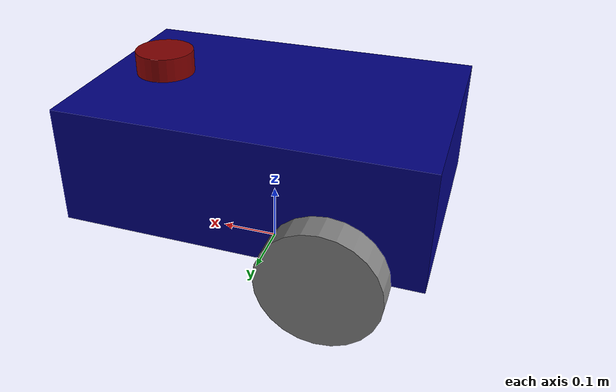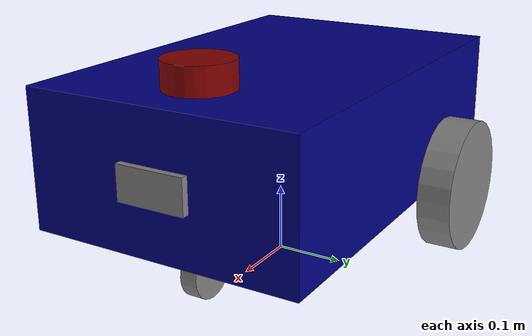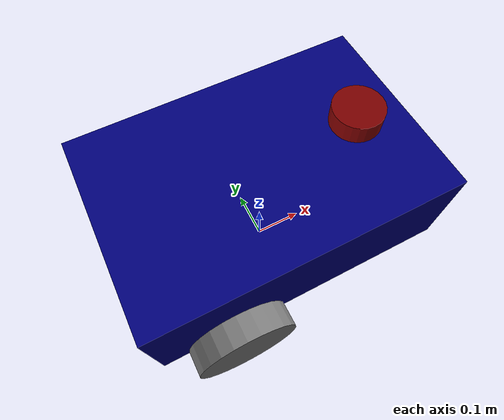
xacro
<?xml version="1.0"?>
<!-- The first thing we need to do is a robot TYPE -->
<robot name="my_robot" xmlns:xacro="http://www.ros.org/wiki/xacro"> <!-- here is the starting point -->
    <!-- Always add this when use xacro -->
    <!-- Here we can add LINKS, JOINTS, and other elements to define the robot -->

    <xacro:include filename="common_properties.xacro"/>
    <xacro:include filename="mobile_base.xacro"/>

    <xacro:include filename="lidar.xacro"/>
    <xacro:include filename="mobile_base_gazebo.xacro"/>

    <xacro:include filename="camera.xacro"/>

</robot> <!-- Here is the end of the robot TYPE -->

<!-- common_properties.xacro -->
<robot xmlns:xacro="http://www.ros.org/wiki/xacro">
    <!-- Materials -->
    <material name="blue">
        <color rgba="0.0 0.0 0.5 1.0"/>
    </material>

    <material name="red">
        <color rgba="0.5 0.0 0.0 1.0"/>
    </material>

    <material name="green">
        <color rgba="0.0 0.5 0.0 1.0"/>
    </material>

    <material name="black">
        <color rgba="0.0 0.0 0.0 1.0"/>
    </material>

    <material name="pink">
        <color rgba="1.0 0.75 0.8 1.0"/>
    </material>

    <material name="gray">
        <color rgba="0.5 0.5 0.5 1"/>
    </material>

    <xacro:macro name="box_inertia" params="m l w h xyz rpy">
        <inertial>
            <origin xyz="${xyz}" rpy="${rpy}"/>
            <mass value="${m}"/>
            <inertia ixx="${(1/12.0) * m * (h*h + l*l)}" ixy="0" ixz="0"
                     iyy="${(1/12.0) * m * (w*w + l*l)}" iyz="0"
                     izz="${(1/12.0) * m * (w*w + h*h)}"/>
        </inertial>
    </xacro:macro>

    <xacro:macro name="cylinder_inertia" params="m r h xyz rpy">
        <inertial>
            <origin xyz="${xyz}" rpy="${rpy}"/>
            <mass value="${m}"/>
            <inertia ixx="${(1/12.0) * m * (3*r*r + h*h)}" ixy="0" ixz="0"
                     iyy="${(1/12.0) * m * (3*r*r + h*h)}" iyz="0"
                     izz="${0.5 * m * r*r}"/>
        </inertial>
    </xacro:macro>

    <xacro:macro name="sphere_inertia" params="m r xyz rpy">
        <inertial>
            <origin xyz="${xyz}" rpy="${rpy}"/>
            <mass value="${m}"/>
            <inertia ixx="${(2/5.0) * m * r*r}" ixy="0" ixz="0"
                     iyy="${(2/5.0) * m * r*r}" iyz="0"
                     izz="${(2/5.0) * m * r*r}"/>
        </inertial>
    </xacro:macro>

</robot>

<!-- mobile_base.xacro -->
<robot xmlns:xacro="http://www.ros.org/wiki/xacro">

    <!-- Defining some variables -->
    <xacro:property name="base_length" value="0.6"/>
    <xacro:property name="base_width" value="0.4"/>
    <xacro:property name="base_height" value="0.2"/>
    <xacro:property name="wheel_radius" value="0.1"/>
    <xacro:property name="wheel_width" value="0.05"/>
    <xacro:property name="caster_wheel_radius" value="${wheel_radius / 2.0}"/>
    <xacro:property name="caster_wheel_support_radius" value="0.04"/>
    <xacro:property name="caster_wheel_support_length" value="${caster_wheel_radius * 0.2}"/>
    <xacro:property name="caster_wheel_real_radius" value="${caster_wheel_radius * 0.8}"/>
    <xacro:property name="caster_wheel_width" value="${wheel_width * 0.5}"/>
    <!-- ============= Defining the links of the robot ============== -->
    <link name="base_link">
        <visual>
            <geometry>
                <box size="${base_length} ${base_width} ${base_height}" />
            </geometry>
            <origin xyz="0 0 ${base_height / 2.0}" rpy="0 0 0"/> <!-- origin of the link -->
            <!-- r is roll, p is pitch, y is yaw -->
            <material name="blue"/>
        </visual>
        <collision>
            <geometry>
                <box size="${base_length} ${base_width} ${base_height}" />
            </geometry>
            <origin xyz="0 0 ${base_height / 2.0}" rpy="0 0 0"/> <!-- origin of the link -->
        </collision>
        <xacro:box_inertia m="5.0" l="${base_length}" w="${base_width}" h="${base_height}"
                           xyz="0 0 ${base_height / 2.0}" rpy="0 0 0"/>
    </link>

    <xacro:macro name="wheel_link" params="prefix">
        <link name="${prefix}_wheel_link">
            <visual>
                <geometry>
                    <cylinder radius="${wheel_radius}" length="${wheel_width}" />
                </geometry>
                <origin xyz="0 0 0" rpy="${pi / 2.0} 0 0"/> <!-- pi is the constant already exist in xacro -->
                <material name="gray"/>
            </visual>
            <collision>
                <geometry>
                    <cylinder radius="${wheel_radius}" length="${wheel_width}" />
                </geometry>
                <origin xyz="0 0 0" rpy="${pi / 2.0} 0 0"/>
            </collision>
            <xacro:cylinder_inertia m="1.0" r="${wheel_radius}" h="${wheel_width}"
                                    xyz="0 0 0" rpy="${pi / 2.0} 0 0"/>
        </link>
    </xacro:macro>

    <xacro:wheel_link prefix="right"/>
    <xacro:wheel_link prefix="left"/>

    <link name="caster_wheel_link_support">
        <visual>
            <geometry>
                <cylinder radius="${caster_wheel_support_radius}" length="${caster_wheel_support_length}" />
            </geometry>
            <origin xyz="0 0 0" rpy="0 0 0"/> <!-- origin of the link -->
            <material name="gray"/>
        </visual>
        <collision>
            <geometry>
                <cylinder radius="${caster_wheel_support_radius}" length="${caster_wheel_support_length}" />
            </geometry>
            <origin xyz="0 0 0" rpy="0 0 0"/> <!-- origin of the link -->
        </collision>
        <xacro:cylinder_inertia m="0.05" r="${caster_wheel_support_radius}" h="${caster_wheel_support_length}"
                              xyz="0 0 0" rpy="0 0 0"/>
    </link>

    <link name="caster_wheel_real_link">
        <visual>
            <geometry>
                <cylinder radius="${caster_wheel_real_radius}" length="${caster_wheel_width}" />
            </geometry>
            <origin xyz="0 0 0" rpy="0 0 0"/> <!-- origin of the link -->
            <material name="gray"/>
        </visual>
        <collision>
            <geometry>
                <cylinder radius="${caster_wheel_real_radius}" length="${caster_wheel_width}" />
            </geometry>
            <origin xyz="0 0 0" rpy="0 0 0"/>
        </collision>
        <xacro:cylinder_inertia m="0.1" r="${caster_wheel_real_radius}" h="${caster_wheel_width}"
                              xyz="0 0 0" rpy="0 0 0"/>
    </link>

    <link name="base_footprint" /> <!-- This link represents the footprint of the robot on the ground it is empty-->

    <!-- ============= Defining the joints of the robot ============== -->
    <joint name="base_left_wheel_joint" type="continuous">
        <parent link="base_link"/>
        <child link="left_wheel_link"/>
        <origin xyz="${-base_length / 4.0} ${-base_width / 2.0 - wheel_width / 2.0} 0" rpy="0 0 0"/> <!-- origin of the joint -->
        <axis xyz="0 1 0"/> <!-- axis of rotation -->
    </joint>

    <joint name="base_right_wheel_joint" type="continuous">
        <parent link="base_link"/>
        <child link="right_wheel_link"/>
        <origin xyz="${-base_length / 4.0} ${base_width / 2.0 + wheel_width / 2.0} 0" rpy="0 0 0"/> <!-- origin of the joint -->
        <axis xyz="0 1 0"/> <!-- axis of rotation -->
    </joint>

    <joint name="base_caster_wheel_support_joint" type="continuous">
        <parent link="base_link"/>
        <child link="caster_wheel_link_support"/>
        <origin xyz="${base_length / 3.0} 0 ${-caster_wheel_support_length / 2.0}" rpy="0 0 0"/> <!-- origin of the joint -->
        <axis xyz="0 0 1"/> <!-- axis of rotation -->
    </joint>

    <joint name="base_caster_wheel_real_joint" type="continuous">
        <parent link="caster_wheel_link_support"/>
        <child link="caster_wheel_real_link"/>
        <origin xyz="0 0 ${-caster_wheel_support_length / 2.0 - caster_wheel_real_radius}" rpy="1.57 1.57 0"/> <!-- origin of the joint -->
        <axis xyz="0 0 1"/> <!-- axis of rotation -->
    </joint>

    <joint name="base_joint" type="fixed">
        <parent link="base_footprint"/>
        <child link="base_link"/>
        <origin xyz="0 0 ${wheel_radius}" rpy="0 0 0"/> <!-- origin of base_footprint_link -->
    </joint>

</robot>

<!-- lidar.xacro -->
<!-- The first thing we need to do is a robot TYPE -->
<robot name="my_robot" xmlns:xacro="http://www.ros.org/wiki/xacro">

    <joint name="laser_joint" type="fixed">
        <parent link="base_link"/>
        <child link="laser_link"/>
        <origin xyz="0.2 0 ${base_height + 0.02}" rpy="0 0 0"/>
    </joint>

    <link name="laser_link">
        <visual>
            <geometry>
                <cylinder radius="0.05" length="0.04"/>
            </geometry>
            <origin xyz="0 0 0" rpy="0 0 0"/>
            <material name="red"/>
        </visual>
        <collision>
            <geometry>
                <cylinder radius="0.05" length="0.04"/>
            </geometry>
            <origin xyz="0 0 0" rpy="0 0 0"/>
        </collision>
        <xacro:cylinder_inertia m="0.1" r="0.05" h="0.04"
                                    xyz="0 0 0" rpy=" 0 0 0"/>
    </link>

</robot> <!-- Here is the end of the robot TYPE -->

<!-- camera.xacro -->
<robot xmlns:xacro="http://www.ros.org/wiki/xacro">

    <xacro:property name="camera_length" value="0.01"/>
    <xacro:property name="camera_width" value="0.1"/>
    <xacro:property name="camera_height" value="0.05"/>

    <link name="camera_link">
        <visual>
            <geometry>
                <box size="${camera_length} ${camera_width} ${camera_height}"/>
            </geometry>
            <material name="gray"/>
        </visual>
        <collision>
            <geometry>
                <box size="${camera_length} ${camera_width} ${camera_height}"/>
            </geometry>
        </collision>
        <xacro:box_inertia m="0.1"
                           l="${camera_length}"
                           w="${camera_width}"
                           h="${camera_height}"
                           xyz="0 0 0"
                           rpy="0 0 0"/>
    </link>

    <joint name="base_camera_joint" type="fixed">
        <parent link="base_link"/>
        <child link="camera_link"/>
        <origin xyz="${(base_length + camera_length) / 2} 0 ${base_height/2}" rpy="0 0 0"/>
    </joint>

    <gazebo reference="camera_link">
        <material>Gazebo/Red</material>
        <sensor name="camera_sensor" type="camera">
            <pose>0 0 0 0 0 0</pose>
            <visualize>true</visualize>
            <update_rate>10.0</update_rate>
            <plugin name="camera_controller" filename="libgazebo_ros_camera.so">
                <frame_name>camera_link</frame_name>
            </plugin>
        </sensor>
    </gazebo>

</robot>
